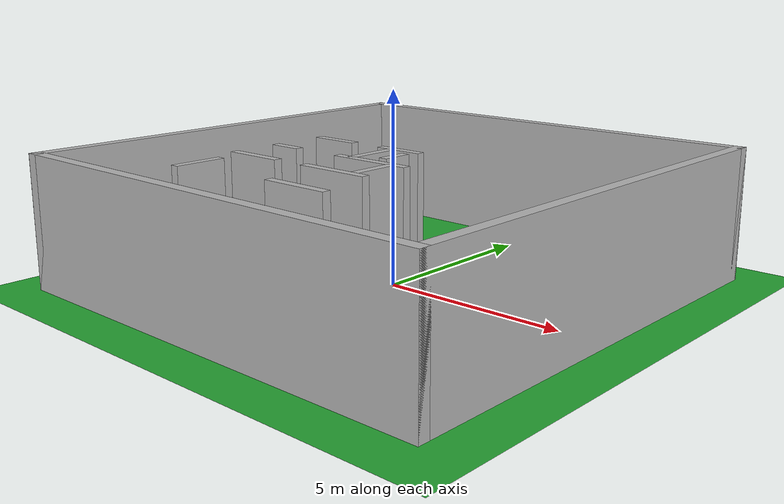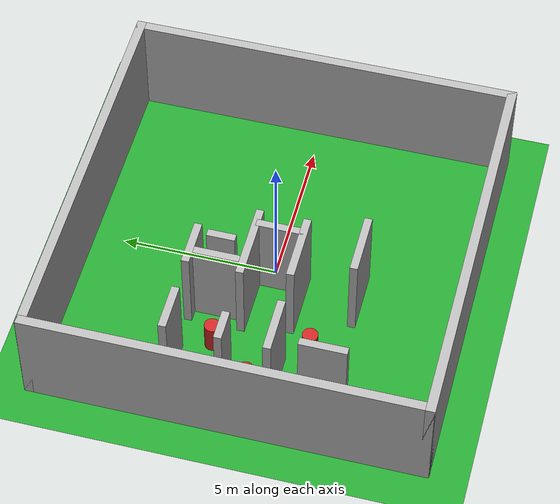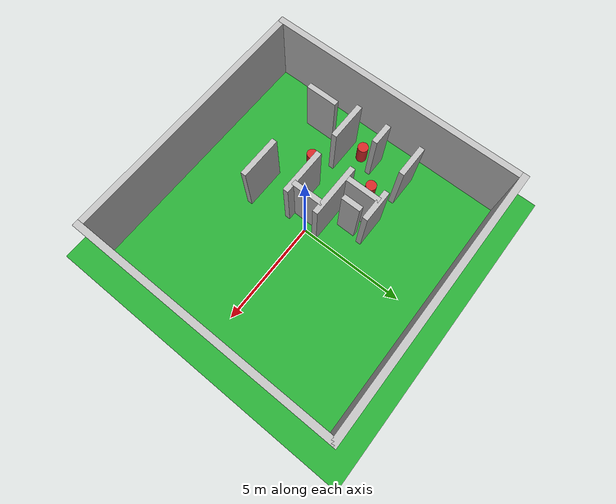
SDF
<?xml version="1.0"?>
<!-- Maze Runner — Hedge Labyrinth (Zero-Shot) -->
<sdf version="1.6">
  <world name="maze_runner">

  <physics type="ode">
    <max_step_size>0.01</max_step_size>
    <real_time_factor>1</real_time_factor>
    <real_time_update_rate>100</real_time_update_rate>
    <ode>
      <solver><type>quick</type><iters>50</iters><sor>1.3</sor></solver>
      <constraints><cfm>0</cfm><erp>0.2</erp>
        <contact_max_correcting_vel>100</contact_max_correcting_vel>
        <contact_surface_layer>0.001</contact_surface_layer>
      </constraints>
    </ode>
  </physics>

  <scene><ambient>0.18 0.28 0.08 1.0</ambient><background>0.12 0.20 0.05 1.0</background><shadows>false</shadows><grid>false</grid><fog><color>0.22 0.32 0.10 1.0</color><type>linear</type><start>4</start><end>12</end><density>0.05</density></fog></scene>

  <light type="directional" name="golden_sun"><cast_shadows>false</cast_shadows><pose>0 0 20 0 0 0</pose><diffuse>0.70 0.88 0.40 1.0</diffuse><specular>0.40 0.25 0.08 1.0</specular><direction>-0.20 0.10 -0.97</direction><attenuation><range>1000</range><constant>0.9</constant><linear>0.01</linear><quadratic>0.001</quadratic></attenuation></light>
  <light type="directional" name="sky_fill"><cast_shadows>false</cast_shadows><pose>0 0 20 0 0 0</pose><diffuse>0.22 0.20 0.32 1.0</diffuse><specular>0 0 0 1</specular><direction>0.10 -0.05 -1.00</direction><attenuation><range>1000</range><constant>1.0</constant><linear>0.0</linear><quadratic>0.0</quadratic></attenuation></light>

  <model name="ground_plane"><static>true</static><pose>0 0 0 0 0 0</pose><link name="link"><collision name="c"><geometry><plane><normal>0 0 1</normal><size>24 24</size></plane></geometry><surface><friction><ode><mu>0.65</mu><mu2>0.65</mu2></ode></friction></surface></collision><visual name="v"><geometry><plane><normal>0 0 1</normal><size>24 24</size></plane></geometry>
          <material><script><uri>file://media/materials/scripts/gazebo.material</uri><name>Gazebo/Green</name></script></material>
</visual></link></model>

  <model name="bnd_n"><static>true</static><pose>0 6.15 1.75 0 0 0</pose><link name="link"><collision name="c"><geometry><box><size>12.600000000000001 0.3 3.5</size></box></geometry></collision><visual name="v"><geometry><box><size>12.600000000000001 0.3 3.5</size></box></geometry>
          <material><script><uri>file:///home/anon/ros2_ws/src/safe_drl_nav/safe_drl_nav/sim_assets/materials/scripts/custom.material</uri><name>Custom/Hedge</name></script></material>
</visual></link></model>

  <model name="bnd_s"><static>true</static><pose>0 -6.15 1.75 0 0 0</pose><link name="link"><collision name="c"><geometry><box><size>12.600000000000001 0.3 3.5</size></box></geometry></collision><visual name="v"><geometry><box><size>12.600000000000001 0.3 3.5</size></box></geometry>
          <material><script><uri>file:///home/anon/ros2_ws/src/safe_drl_nav/safe_drl_nav/sim_assets/materials/scripts/custom.material</uri><name>Custom/Hedge</name></script></material>
</visual></link></model>

  <model name="bnd_e"><static>true</static><pose>6.15 0 1.75 0 0 0</pose><link name="link"><collision name="c"><geometry><box><size>0.3 12.600000000000001 3.5</size></box></geometry></collision><visual name="v"><geometry><box><size>0.3 12.600000000000001 3.5</size></box></geometry>
          <material><script><uri>file:///home/anon/ros2_ws/src/safe_drl_nav/safe_drl_nav/sim_assets/materials/scripts/custom.material</uri><name>Custom/Hedge</name></script></material>
</visual></link></model>

  <model name="bnd_w"><static>true</static><pose>-6.15 0 1.75 0 0 0</pose><link name="link"><collision name="c"><geometry><box><size>0.3 12.600000000000001 3.5</size></box></geometry></collision><visual name="v"><geometry><box><size>0.3 12.600000000000001 3.5</size></box></geometry>
          <material><script><uri>file:///home/anon/ros2_ws/src/safe_drl_nav/safe_drl_nav/sim_assets/materials/scripts/custom.material</uri><name>Custom/Hedge</name></script></material>
</visual></link></model>

  <model name="w_h1l"><static>true</static><pose>-4.1 -1.0 1.5 0 0 0</pose><link name="link"><collision name="c"><geometry><box><size>1.8 0.25 3.0</size></box></geometry></collision><visual name="v"><geometry><box><size>1.8 0.25 3.0</size></box></geometry>
          <material><script><uri>file:///home/anon/ros2_ws/src/safe_drl_nav/safe_drl_nav/sim_assets/materials/scripts/custom.material</uri><name>Custom/Hedge</name></script></material>
</visual></link></model>

  <model name="w_h1r"><static>true</static><pose>-1.1 -1.0 1.5 0 0 0</pose><link name="link"><collision name="c"><geometry><box><size>2.2 0.25 3.0</size></box></geometry></collision><visual name="v"><geometry><box><size>2.2 0.25 3.0</size></box></geometry>
          <material><script><uri>file:///home/anon/ros2_ws/src/safe_drl_nav/safe_drl_nav/sim_assets/materials/scripts/custom.material</uri><name>Custom/Hedge</name></script></material>
</visual></link></model>

  <model name="w_h2l"><static>true</static><pose>-4.5 0.5 1.5 0 0 0</pose><link name="link"><collision name="c"><geometry><box><size>1.0 0.25 3.0</size></box></geometry></collision><visual name="v"><geometry><box><size>1.0 0.25 3.0</size></box></geometry>
          <material><script><uri>file:///home/anon/ros2_ws/src/safe_drl_nav/safe_drl_nav/sim_assets/materials/scripts/custom.material</uri><name>Custom/Hedge</name></script></material>
</visual></link></model>

  <model name="w_h2r"><static>true</static><pose>-1.25 0.5 1.5 0 0 0</pose><link name="link"><collision name="c"><geometry><box><size>2.5 0.25 3.0</size></box></geometry></collision><visual name="v"><geometry><box><size>2.5 0.25 3.0</size></box></geometry>
          <material><script><uri>file:///home/anon/ros2_ws/src/safe_drl_nav/safe_drl_nav/sim_assets/materials/scripts/custom.material</uri><name>Custom/Hedge</name></script></material>
</visual></link></model>

  <model name="w_h3l"><static>true</static><pose>-4.25 2.2 1.5 0 0 0</pose><link name="link"><collision name="c"><geometry><box><size>1.5 0.25 3.0</size></box></geometry></collision><visual name="v"><geometry><box><size>1.5 0.25 3.0</size></box></geometry>
          <material><script><uri>file:///home/anon/ros2_ws/src/safe_drl_nav/safe_drl_nav/sim_assets/materials/scripts/custom.material</uri><name>Custom/Hedge</name></script></material>
</visual></link></model>

  <model name="w_h3r"><static>true</static><pose>-1.75 2.2 1.5 0 0 0</pose><link name="link"><collision name="c"><geometry><box><size>1.5 0.25 3.0</size></box></geometry></collision><visual name="v"><geometry><box><size>1.5 0.25 3.0</size></box></geometry>
          <material><script><uri>file:///home/anon/ros2_ws/src/safe_drl_nav/safe_drl_nav/sim_assets/materials/scripts/custom.material</uri><name>Custom/Hedge</name></script></material>
</visual></link></model>

  <model name="w_v1"><static>true</static><pose>-0.5 -0.25 1.5 0 0 0</pose><link name="link"><collision name="c"><geometry><box><size>0.25 1.5 3.0</size></box></geometry></collision><visual name="v"><geometry><box><size>0.25 1.5 3.0</size></box></geometry>
          <material><script><uri>file:///home/anon/ros2_ws/src/safe_drl_nav/safe_drl_nav/sim_assets/materials/scripts/custom.material</uri><name>Custom/Hedge</name></script></material>
</visual></link></model>

  <model name="w_v2"><static>true</static><pose>-2.0 1.35 1.5 0 0 0</pose><link name="link"><collision name="c"><geometry><box><size>0.25 1.7 3.0</size></box></geometry></collision><visual name="v"><geometry><box><size>0.25 1.7 3.0</size></box></geometry>
          <material><script><uri>file:///home/anon/ros2_ws/src/safe_drl_nav/safe_drl_nav/sim_assets/materials/scripts/custom.material</uri><name>Custom/Hedge</name></script></material>
</visual></link></model>

  <model name="w_de1"><static>true</static><pose>-4.5 -2.6 1.5 0 0 0</pose><link name="link"><collision name="c"><geometry><box><size>0.25 1.5 3.0</size></box></geometry></collision><visual name="v"><geometry><box><size>0.25 1.5 3.0</size></box></geometry>
          <material><script><uri>file:///home/anon/ros2_ws/src/safe_drl_nav/safe_drl_nav/sim_assets/materials/scripts/custom.material</uri><name>Custom/Hedge</name></script></material>
</visual></link></model>

  <model name="w_de2"><static>true</static><pose>-0.5 -2.8 1.5 0 0 0</pose><link name="link"><collision name="c"><geometry><box><size>2.0 0.25 3.0</size></box></geometry></collision><visual name="v"><geometry><box><size>2.0 0.25 3.0</size></box></geometry>
          <material><script><uri>file:///home/anon/ros2_ws/src/safe_drl_nav/safe_drl_nav/sim_assets/materials/scripts/custom.material</uri><name>Custom/Hedge</name></script></material>
</visual></link></model>

  <model name="w_de3"><static>true</static><pose>-1.25 1.4 1.5 0 0 0</pose><link name="link"><collision name="c"><geometry><box><size>0.25 0.9 3.0</size></box></geometry></collision><visual name="v"><geometry><box><size>0.25 0.9 3.0</size></box></geometry>
          <material><script><uri>file:///home/anon/ros2_ws/src/safe_drl_nav/safe_drl_nav/sim_assets/materials/scripts/custom.material</uri><name>Custom/Hedge</name></script></material>
</visual></link></model>

  <model name="wp1"><static>true</static><pose>-2.8 -1.8 0.5 0 0 0</pose><link name="link"><collision name="c"><geometry><cylinder><radius>0.25</radius><length>1.0</length></cylinder></geometry></collision><visual name="v"><geometry><cylinder><radius>0.25</radius><length>1.0</length></cylinder></geometry>
          <material><script><uri>file://media/materials/scripts/gazebo.material</uri><name>Gazebo/Red</name></script></material>
</visual></link></model>

  <model name="wp2"><static>true</static><pose>-4.5 -0.2 0.5 0 0 0</pose><link name="link"><collision name="c"><geometry><cylinder><radius>0.25</radius><length>1.0</length></cylinder></geometry></collision><visual name="v"><geometry><cylinder><radius>0.25</radius><length>1.0</length></cylinder></geometry>
          <material><script><uri>file://media/materials/scripts/gazebo.material</uri><name>Gazebo/Red</name></script></material>
</visual></link></model>

  <model name="wp3"><static>true</static><pose>-3.2 1.2 0.5 0 0 0</pose><link name="link"><collision name="c"><geometry><cylinder><radius>0.25</radius><length>1.0</length></cylinder></geometry></collision><visual name="v"><geometry><cylinder><radius>0.25</radius><length>1.0</length></cylinder></geometry>
          <material><script><uri>file://media/materials/scripts/gazebo.material</uri><name>Gazebo/Red</name></script></material>
</visual></link></model>

  </world>
</sdf>
